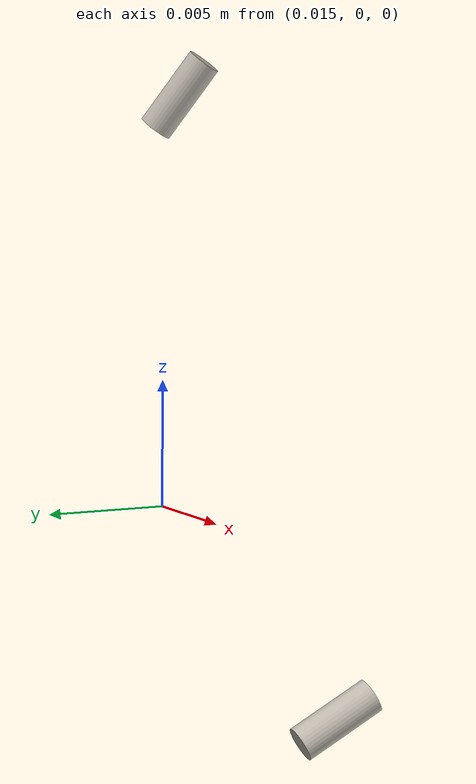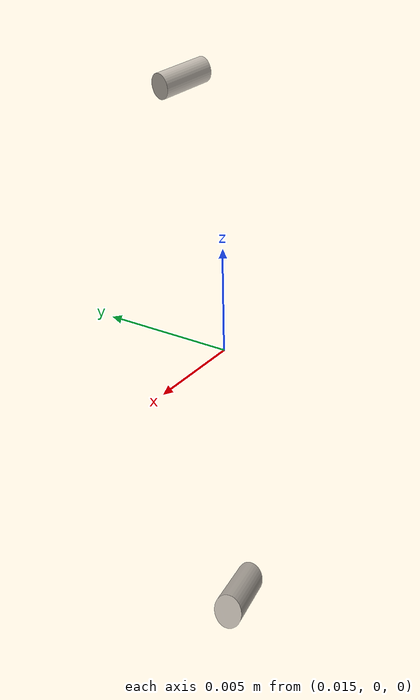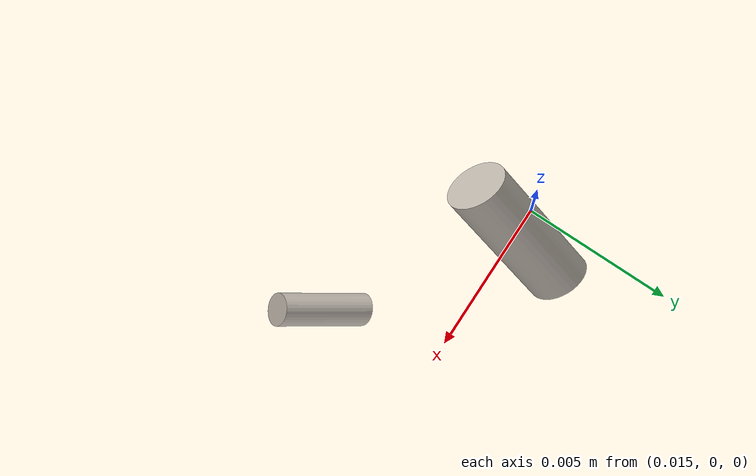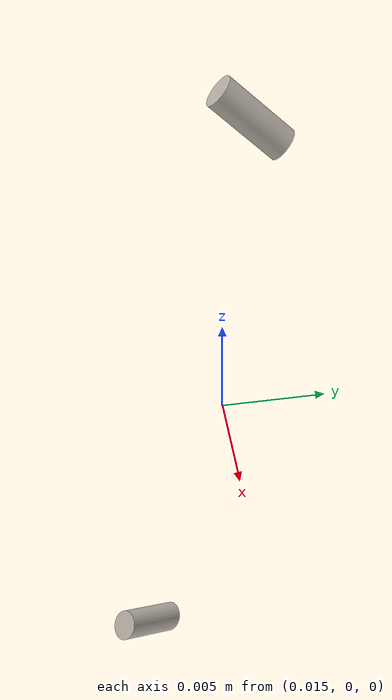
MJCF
<mujoco model="donut_4">
  <asset>
    <texture file="/home/abhiram03/Desktop/mimicgen/robosuite-kitchen/robosuite/models/assets/textures/ceramic.png" name="tex-donut_4" type="2d"/>
    <material name="donut_4" reflectance="0.5" texrepeat="1 1" texture="tex-donut_4" texuniform="false"/>
    <mesh file="visual/model_normalized_0.obj" name="model_normalized_0_vis" scale="0.06000000000000002 0.06000000000000002 0.06000000000000002" refquat="-0.20526226376117865 0.2052622637611787 0.6766590005871763 0.6766590005871763"/>
    <mesh file="collision/model_normalized_collision_13.obj" name="model_normalized_collision_13._coll" scale="0.06000000000000002 0.06000000000000002 0.06000000000000002" refquat="-0.20526226376117865 0.2052622637611787 0.6766590005871763 0.6766590005871763"/>
    <mesh file="collision/model_normalized_collision_15.obj" name="model_normalized_collision_15._coll" scale="0.06000000000000002 0.06000000000000002 0.06000000000000002" refquat="-0.20526226376117865 0.2052622637611787 0.6766590005871763 0.6766590005871763"/>
    <mesh file="collision/model_normalized_collision_10.obj" name="model_normalized_collision_10._coll" scale="0.06000000000000002 0.06000000000000002 0.06000000000000002" refquat="-0.20526226376117865 0.2052622637611787 0.6766590005871763 0.6766590005871763"/>
    <mesh file="collision/model_normalized_collision_26.obj" name="model_normalized_collision_26._coll" scale="0.06000000000000002 0.06000000000000002 0.06000000000000002" refquat="-0.20526226376117865 0.2052622637611787 0.6766590005871763 0.6766590005871763"/>
    <mesh file="collision/model_normalized_collision_25.obj" name="model_normalized_collision_25._coll" scale="0.06000000000000002 0.06000000000000002 0.06000000000000002" refquat="-0.20526226376117865 0.2052622637611787 0.6766590005871763 0.6766590005871763"/>
    <mesh file="collision/model_normalized_collision_5.obj" name="model_normalized_collision_5._coll" scale="0.06000000000000002 0.06000000000000002 0.06000000000000002" refquat="-0.20526226376117865 0.2052622637611787 0.6766590005871763 0.6766590005871763"/>
    <mesh file="collision/model_normalized_collision_31.obj" name="model_normalized_collision_31._coll" scale="0.06000000000000002 0.06000000000000002 0.06000000000000002" refquat="-0.20526226376117865 0.2052622637611787 0.6766590005871763 0.6766590005871763"/>
    <mesh file="collision/model_normalized_collision_3.obj" name="model_normalized_collision_3._coll" scale="0.06000000000000002 0.06000000000000002 0.06000000000000002" refquat="-0.20526226376117865 0.2052622637611787 0.6766590005871763 0.6766590005871763"/>
    <mesh file="collision/model_normalized_collision_14.obj" name="model_normalized_collision_14._coll" scale="0.06000000000000002 0.06000000000000002 0.06000000000000002" refquat="-0.20526226376117865 0.2052622637611787 0.6766590005871763 0.6766590005871763"/>
    <mesh file="collision/model_normalized_collision_28.obj" name="model_normalized_collision_28._coll" scale="0.06000000000000002 0.06000000000000002 0.06000000000000002" refquat="-0.20526226376117865 0.2052622637611787 0.6766590005871763 0.6766590005871763"/>
    <mesh file="collision/model_normalized_collision_11.obj" name="model_normalized_collision_11._coll" scale="0.06000000000000002 0.06000000000000002 0.06000000000000002" refquat="-0.20526226376117865 0.2052622637611787 0.6766590005871763 0.6766590005871763"/>
    <mesh file="collision/model_normalized_collision_29.obj" name="model_normalized_collision_29._coll" scale="0.06000000000000002 0.06000000000000002 0.06000000000000002" refquat="-0.20526226376117865 0.2052622637611787 0.6766590005871763 0.6766590005871763"/>
    <mesh file="collision/model_normalized_collision_24.obj" name="model_normalized_collision_24._coll" scale="0.06000000000000002 0.06000000000000002 0.06000000000000002" refquat="-0.20526226376117865 0.2052622637611787 0.6766590005871763 0.6766590005871763"/>
    <mesh file="collision/model_normalized_collision_1.obj" name="model_normalized_collision_1._coll" scale="0.06000000000000002 0.06000000000000002 0.06000000000000002" refquat="-0.20526226376117865 0.2052622637611787 0.6766590005871763 0.6766590005871763"/>
    <mesh file="collision/model_normalized_collision_0.obj" name="model_normalized_collision_0._coll" scale="0.06000000000000002 0.06000000000000002 0.06000000000000002" refquat="-0.20526226376117865 0.2052622637611787 0.6766590005871763 0.6766590005871763"/>
    <mesh file="collision/model_normalized_collision_27.obj" name="model_normalized_collision_27._coll" scale="0.06000000000000002 0.06000000000000002 0.06000000000000002" refquat="-0.20526226376117865 0.2052622637611787 0.6766590005871763 0.6766590005871763"/>
    <mesh file="collision/model_normalized_collision_9.obj" name="model_normalized_collision_9._coll" scale="0.06000000000000002 0.06000000000000002 0.06000000000000002" refquat="-0.20526226376117865 0.2052622637611787 0.6766590005871763 0.6766590005871763"/>
    <mesh file="collision/model_normalized_collision_19.obj" name="model_normalized_collision_19._coll" scale="0.06000000000000002 0.06000000000000002 0.06000000000000002" refquat="-0.20526226376117865 0.2052622637611787 0.6766590005871763 0.6766590005871763"/>
    <mesh file="collision/model_normalized_collision_21.obj" name="model_normalized_collision_21._coll" scale="0.06000000000000002 0.06000000000000002 0.06000000000000002" refquat="-0.20526226376117865 0.2052622637611787 0.6766590005871763 0.6766590005871763"/>
    <mesh file="collision/model_normalized_collision_30.obj" name="model_normalized_collision_30._coll" scale="0.06000000000000002 0.06000000000000002 0.06000000000000002" refquat="-0.20526226376117865 0.2052622637611787 0.6766590005871763 0.6766590005871763"/>
    <mesh file="collision/model_normalized_collision_20.obj" name="model_normalized_collision_20._coll" scale="0.06000000000000002 0.06000000000000002 0.06000000000000002" refquat="-0.20526226376117865 0.2052622637611787 0.6766590005871763 0.6766590005871763"/>
    <mesh file="collision/model_normalized_collision_2.obj" name="model_normalized_collision_2._coll" scale="0.06000000000000002 0.06000000000000002 0.06000000000000002" refquat="-0.20526226376117865 0.2052622637611787 0.6766590005871763 0.6766590005871763"/>
    <mesh file="collision/model_normalized_collision_7.obj" name="model_normalized_collision_7._coll" scale="0.06000000000000002 0.06000000000000002 0.06000000000000002" refquat="-0.20526226376117865 0.2052622637611787 0.6766590005871763 0.6766590005871763"/>
    <mesh file="collision/model_normalized_collision_22.obj" name="model_normalized_collision_22._coll" scale="0.06000000000000002 0.06000000000000002 0.06000000000000002" refquat="-0.20526226376117865 0.2052622637611787 0.6766590005871763 0.6766590005871763"/>
    <mesh file="collision/model_normalized_collision_16.obj" name="model_normalized_collision_16._coll" scale="0.06000000000000002 0.06000000000000002 0.06000000000000002" refquat="-0.20526226376117865 0.2052622637611787 0.6766590005871763 0.6766590005871763"/>
    <mesh file="collision/model_normalized_collision_8.obj" name="model_normalized_collision_8._coll" scale="0.06000000000000002 0.06000000000000002 0.06000000000000002" refquat="-0.20526226376117865 0.2052622637611787 0.6766590005871763 0.6766590005871763"/>
    <mesh file="collision/model_normalized_collision_6.obj" name="model_normalized_collision_6._coll" scale="0.06000000000000002 0.06000000000000002 0.06000000000000002" refquat="-0.20526226376117865 0.2052622637611787 0.6766590005871763 0.6766590005871763"/>
    <mesh file="collision/model_normalized_collision_18.obj" name="model_normalized_collision_18._coll" scale="0.06000000000000002 0.06000000000000002 0.06000000000000002" refquat="-0.20526226376117865 0.2052622637611787 0.6766590005871763 0.6766590005871763"/>
    <mesh file="collision/model_normalized_collision_17.obj" name="model_normalized_collision_17._coll" scale="0.06000000000000002 0.06000000000000002 0.06000000000000002" refquat="-0.20526226376117865 0.2052622637611787 0.6766590005871763 0.6766590005871763"/>
    <mesh file="collision/model_normalized_collision_12.obj" name="model_normalized_collision_12._coll" scale="0.06000000000000002 0.06000000000000002 0.06000000000000002" refquat="-0.20526226376117865 0.2052622637611787 0.6766590005871763 0.6766590005871763"/>
    <mesh file="collision/model_normalized_collision_4.obj" name="model_normalized_collision_4._coll" scale="0.06000000000000002 0.06000000000000002 0.06000000000000002" refquat="-0.20526226376117865 0.2052622637611787 0.6766590005871763 0.6766590005871763"/>
    <mesh file="collision/model_normalized_collision_23.obj" name="model_normalized_collision_23._coll" scale="0.06000000000000002 0.06000000000000002 0.06000000000000002" refquat="-0.20526226376117865 0.2052622637611787 0.6766590005871763 0.6766590005871763"/>
    <texture type="2d" name="9da4aed1b8e9_donut__3d_asset_0_g_texture_kd" file="visual/9da4aed1b8e9_donut__3d_asset_0_g_texture_kd.png"/>
    <material name="Material_0" texture="9da4aed1b8e9_donut__3d_asset_0_g_texture_kd" specular="0.5" shininess="0.5"/>
  </asset>
  <worldbody>
    <body>
      <body name="object">
        <geom solimp="0.998 0.998 0.001" solref="0.001 1" density="100" friction="0.95 0.3 0.1" type="mesh" mesh="model_normalized_0_vis" conaffinity="0" contype="0" group="1" material="Material_0"/>
        <geom solimp="0.998 0.998 0.001" solref="0.001 1" density="100" friction="0.95 0.3 0.1" type="mesh" mesh="model_normalized_collision_13._coll" group="0" rgba="0.8 0.8 0.8 0.0"/>
        <geom solimp="0.998 0.998 0.001" solref="0.001 1" density="100" friction="0.95 0.3 0.1" type="mesh" mesh="model_normalized_collision_15._coll" group="0" rgba="0.8 0.8 0.8 0.0"/>
        <geom solimp="0.998 0.998 0.001" solref="0.001 1" density="100" friction="0.95 0.3 0.1" type="mesh" mesh="model_normalized_collision_10._coll" group="0" rgba="0.8 0.8 0.8 0.0"/>
        <geom solimp="0.998 0.998 0.001" solref="0.001 1" density="100" friction="0.95 0.3 0.1" type="mesh" mesh="model_normalized_collision_26._coll" group="0" rgba="0.8 0.8 0.8 0.0"/>
        <geom solimp="0.998 0.998 0.001" solref="0.001 1" density="100" friction="0.95 0.3 0.1" type="mesh" mesh="model_normalized_collision_25._coll" group="0" rgba="0.8 0.8 0.8 0.0"/>
        <geom solimp="0.998 0.998 0.001" solref="0.001 1" density="100" friction="0.95 0.3 0.1" type="mesh" mesh="model_normalized_collision_5._coll" group="0" rgba="0.8 0.8 0.8 0.0"/>
        <geom solimp="0.998 0.998 0.001" solref="0.001 1" density="100" friction="0.95 0.3 0.1" type="mesh" mesh="model_normalized_collision_31._coll" group="0" rgba="0.8 0.8 0.8 0.0"/>
        <geom solimp="0.998 0.998 0.001" solref="0.001 1" density="100" friction="0.95 0.3 0.1" type="mesh" mesh="model_normalized_collision_3._coll" group="0" rgba="0.8 0.8 0.8 0.0"/>
        <geom solimp="0.998 0.998 0.001" solref="0.001 1" density="100" friction="0.95 0.3 0.1" type="mesh" mesh="model_normalized_collision_14._coll" group="0" rgba="0.8 0.8 0.8 0.0"/>
        <geom solimp="0.998 0.998 0.001" solref="0.001 1" density="100" friction="0.95 0.3 0.1" type="mesh" mesh="model_normalized_collision_28._coll" group="0" rgba="0.8 0.8 0.8 0.0"/>
        <geom solimp="0.998 0.998 0.001" solref="0.001 1" density="100" friction="0.95 0.3 0.1" type="mesh" mesh="model_normalized_collision_11._coll" group="0" rgba="0.8 0.8 0.8 0.0"/>
        <geom solimp="0.998 0.998 0.001" solref="0.001 1" density="100" friction="0.95 0.3 0.1" type="mesh" mesh="model_normalized_collision_29._coll" group="0" rgba="0.8 0.8 0.8 0.0"/>
        <geom solimp="0.998 0.998 0.001" solref="0.001 1" density="100" friction="0.95 0.3 0.1" type="mesh" mesh="model_normalized_collision_24._coll" group="0" rgba="0.8 0.8 0.8 0.0"/>
        <geom solimp="0.998 0.998 0.001" solref="0.001 1" density="100" friction="0.95 0.3 0.1" type="mesh" mesh="model_normalized_collision_1._coll" group="0" rgba="0.8 0.8 0.8 0.0"/>
        <geom solimp="0.998 0.998 0.001" solref="0.001 1" density="100" friction="0.95 0.3 0.1" type="mesh" mesh="model_normalized_collision_0._coll" group="0" rgba="0.8 0.8 0.8 0.0"/>
        <geom solimp="0.998 0.998 0.001" solref="0.001 1" density="100" friction="0.95 0.3 0.1" type="mesh" mesh="model_normalized_collision_27._coll" group="0" rgba="0.8 0.8 0.8 0.0"/>
        <geom solimp="0.998 0.998 0.001" solref="0.001 1" density="100" friction="0.95 0.3 0.1" type="mesh" mesh="model_normalized_collision_9._coll" group="0" rgba="0.8 0.8 0.8 0.0"/>
        <geom solimp="0.998 0.998 0.001" solref="0.001 1" density="100" friction="0.95 0.3 0.1" type="mesh" mesh="model_normalized_collision_19._coll" group="0" rgba="0.8 0.8 0.8 0.0"/>
        <geom solimp="0.998 0.998 0.001" solref="0.001 1" density="100" friction="0.95 0.3 0.1" type="mesh" mesh="model_normalized_collision_21._coll" group="0" rgba="0.8 0.8 0.8 0.0"/>
        <geom solimp="0.998 0.998 0.001" solref="0.001 1" density="100" friction="0.95 0.3 0.1" type="mesh" mesh="model_normalized_collision_30._coll" group="0" rgba="0.8 0.8 0.8 0.0"/>
        <geom solimp="0.998 0.998 0.001" solref="0.001 1" density="100" friction="0.95 0.3 0.1" type="mesh" mesh="model_normalized_collision_20._coll" group="0" rgba="0.8 0.8 0.8 0.0"/>
        <geom solimp="0.998 0.998 0.001" solref="0.001 1" density="100" friction="0.95 0.3 0.1" type="mesh" mesh="model_normalized_collision_2._coll" group="0" rgba="0.8 0.8 0.8 0.0"/>
        <geom solimp="0.998 0.998 0.001" solref="0.001 1" density="100" friction="0.95 0.3 0.1" type="mesh" mesh="model_normalized_collision_7._coll" group="0" rgba="0.8 0.8 0.8 0.0"/>
        <geom solimp="0.998 0.998 0.001" solref="0.001 1" density="100" friction="0.95 0.3 0.1" type="mesh" mesh="model_normalized_collision_22._coll" group="0" rgba="0.8 0.8 0.8 0.0"/>
        <geom solimp="0.998 0.998 0.001" solref="0.001 1" density="100" friction="0.95 0.3 0.1" type="mesh" mesh="model_normalized_collision_16._coll" group="0" rgba="0.8 0.8 0.8 0.0"/>
        <geom solimp="0.998 0.998 0.001" solref="0.001 1" density="100" friction="0.95 0.3 0.1" type="mesh" mesh="model_normalized_collision_8._coll" group="0" rgba="0.8 0.8 0.8 0.0"/>
        <geom solimp="0.998 0.998 0.001" solref="0.001 1" density="100" friction="0.95 0.3 0.1" type="mesh" mesh="model_normalized_collision_6._coll" group="0" rgba="0.8 0.8 0.8 0.0"/>
        <geom solimp="0.998 0.998 0.001" solref="0.001 1" density="100" friction="0.95 0.3 0.1" type="mesh" mesh="model_normalized_collision_18._coll" group="0" rgba="0.8 0.8 0.8 0.0"/>
        <geom solimp="0.998 0.998 0.001" solref="0.001 1" density="100" friction="0.95 0.3 0.1" type="mesh" mesh="model_normalized_collision_17._coll" group="0" rgba="0.8 0.8 0.8 0.0"/>
        <geom solimp="0.998 0.998 0.001" solref="0.001 1" density="100" friction="0.95 0.3 0.1" type="mesh" mesh="model_normalized_collision_12._coll" group="0" rgba="0.8 0.8 0.8 0.0"/>
        <geom solimp="0.998 0.998 0.001" solref="0.001 1" density="100" friction="0.95 0.3 0.1" type="mesh" mesh="model_normalized_collision_4._coll" group="0" rgba="0.8 0.8 0.8 0.0"/>
        <geom solimp="0.998 0.998 0.001" solref="0.001 1" density="100" friction="0.95 0.3 0.1" type="mesh" mesh="model_normalized_collision_23._coll" group="0" rgba="0.8 0.8 0.8 0.0"/>
      </body>
      <site rgba="0 0 0 0" size="0.005" pos="-0.0016423630330043109 -0.0005025719953091375 -0.026794719911659087" name="bottom_site"/>
      <site rgba="0 0 0 0" size="0.005" pos="-0.0016423630330043109 -0.0005025719953091375 0.026841645857294382" name="top_site"/>
      <site rgba="0 0 0 0" size="0.005" pos="0.028362651940769798 0.02912621664842723 2.346297281764554e-05" name="horizontal_radius_site"/>
    </body>
  </worldbody>
</mujoco>
